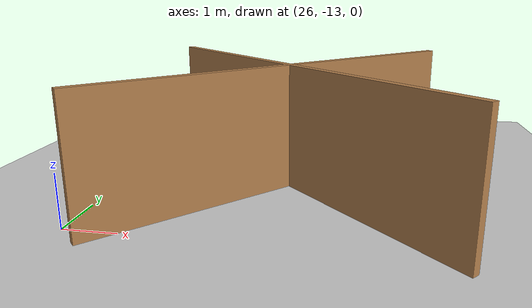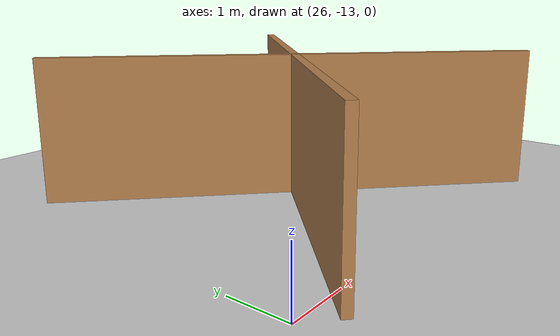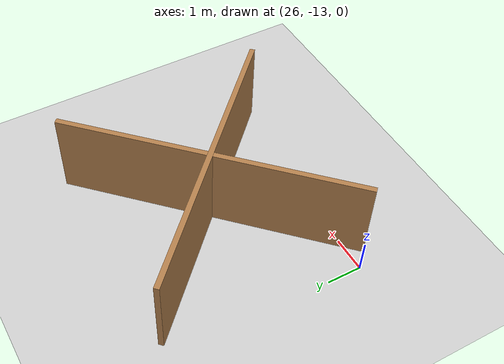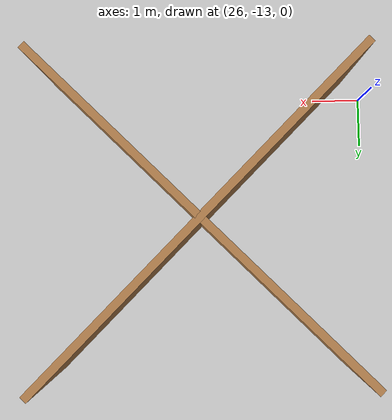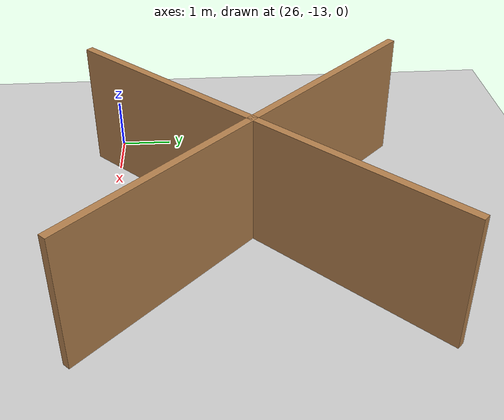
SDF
<sdf version="1.6">
 <world name="default">
  <model name="ground_plane">
   <static>1</static>
   <link name="link">
    <collision name="collision">
     <geometry><plane><normal>0 0 1</normal><size>100 100</size></plane></geometry>
     <surface><friction><ode><mu>100</mu><mu2>50</mu2></ode></friction></surface>
    </collision>
    <visual name="visual">
     <cast_shadows>0</cast_shadows>
     <geometry><plane><normal>0 0 1</normal><size>100 100</size></plane></geometry>
     <material>
      <script><uri>file://media/materials/scripts/gazebo.material</uri><name>Gazebo/Grey</name></script>
     </material>
    </visual>
   </link>
  </model>
  <model name="obs3_13">
   <pose>29.501 -10.3792 0 0 -0 0</pose>
   <link name="Wall_0">
    <collision name="Wall_0_Collision">
     <geometry><box><size>8.63528 0.15 2.5</size></box></geometry>
     <pose>0 0 1.25 0 -0 0</pose>
    </collision>
    <visual name="Wall_0_Visual">
     <pose>0 0 1.25 0 -0 0</pose>
     <geometry><box><size>8.63528 0.15 2.5</size></box></geometry>
     <material>
      <script><uri>file://media/materials/scripts/gazebo.material</uri><name>Gazebo/Wood</name></script>
      <ambient>1 1 1 1</ambient>
     </material>
    </visual>
    <pose>0 0 0 0 0 -0.785398</pose>
   </link>
   <link name="Wall_2">
    <collision name="Wall_2_Collision">
     <geometry><box><size>8.63528 0.15 2.5</size></box></geometry>
     <pose>0 0 1.25 0 -0 0</pose>
    </collision>
    <visual name="Wall_2_Visual">
     <pose>0 0 1.25 0 -0 0</pose>
     <geometry><box><size>8.63528 0.15 2.5</size></box></geometry>
     <material>
      <script><uri>file://media/materials/scripts/gazebo.material</uri><name>Gazebo/Wood</name></script>
      <ambient>1 1 1 1</ambient>
     </material>
    </visual>
    <pose>0 0 0 0 0 -2.35619</pose>
   </link>
   <static>1</static>
  </model>
 </world>
</sdf>
